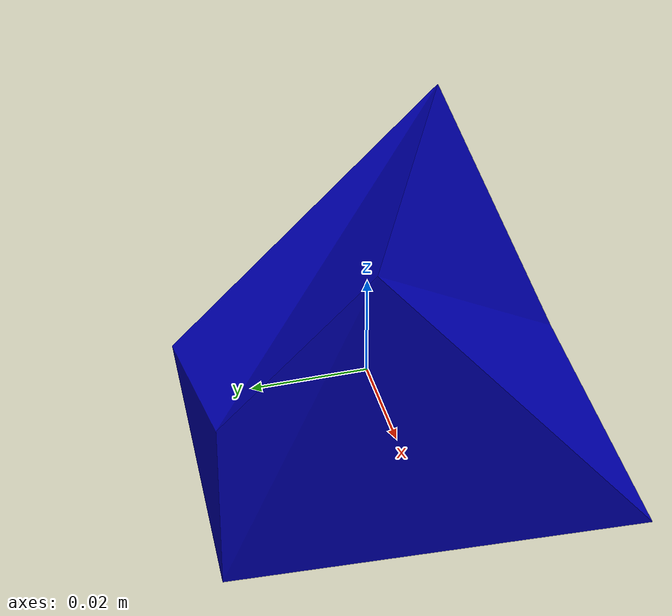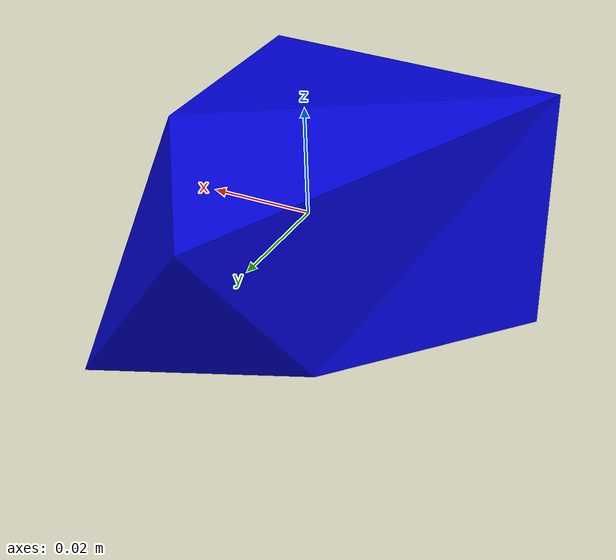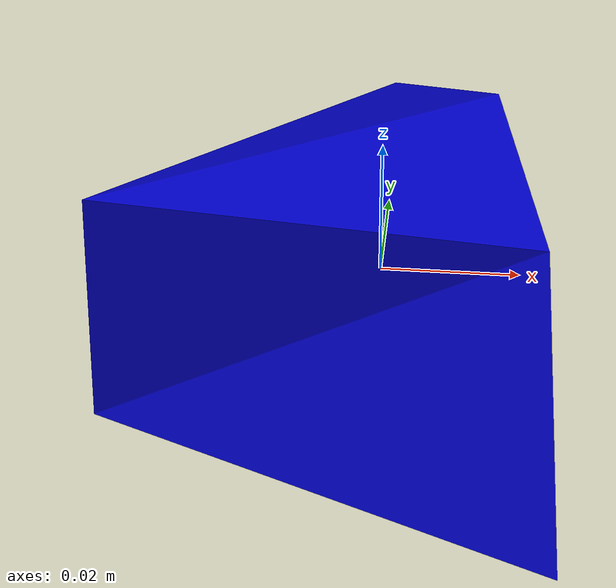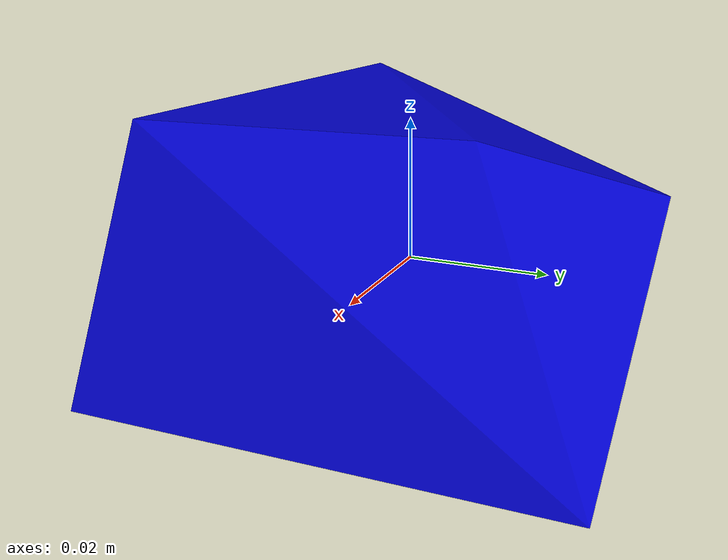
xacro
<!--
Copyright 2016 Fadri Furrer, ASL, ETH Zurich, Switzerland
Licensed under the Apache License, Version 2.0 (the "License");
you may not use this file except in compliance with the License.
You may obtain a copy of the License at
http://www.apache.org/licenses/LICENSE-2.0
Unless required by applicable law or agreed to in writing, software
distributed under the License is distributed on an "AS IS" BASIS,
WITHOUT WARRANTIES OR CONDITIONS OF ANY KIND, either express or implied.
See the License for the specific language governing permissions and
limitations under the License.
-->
<?xml version="1.0"?>

<robot name="3_poly" xmlns:xacro="http://ros.org/wiki/xacro">
  <xacro:property name="mesh_file" value="package://urdf_models/models/polygons/4_poly_2.stl" />
  <xacro:property name="mass" value="0.1" />
  <link name="base_link"></link>

  <joint name="base_joint" type="fixed">
    <origin xyz="0 0 0" rpy="0 0 0" />
    <parent link="base_link" />
    <child link="base_link_inertia" />
  </joint>
  <link name="base_link_inertia">
      <inertial>
        <mass value="${mass}" />  <!-- [kg] -->
        <origin xyz="-0.010158e-01 -0.025367e-01  -0.008778e-01 " />
        <inertia ixx="0.003829e-02" ixy="-0.000181e-02" 	ixz="0.000153e-02"
                			    iyy="0.003572e-02"  iyz="0.0000063e-02"
                 								izz="0.004654e-02" />
      </inertial>

      <visual>
        <origin xyz="0 0 0" rpy="0 0 0" />
        <geometry>
          <mesh filename="${mesh_file}" scale="1 1 1" />
        </geometry>
	<material name="blue">
	  <color rgba="0 0 .8 1"/>
	</material>
      </visual>

      <collision>
        <origin xyz="0 0 0" rpy="0 0 0" />
        <geometry>
          <mesh filename="${mesh_file}" scale="1 1 1" />
        </geometry>
        <surface>
          	<friction>
          		<ode>
            		<mu>1.2</mu>
            		<mu2>1.2</mu2>
          		</ode>
        	</friction>

            <bounce>
              <restitution_coefficient>10.0</restitution_coefficient>
            </bounce>
            <contact>
              <ode>
                <max_vel>10</max_vel>
              </ode>
            </contact>
        </surface>
      </collision>
    </link>

</robot>
